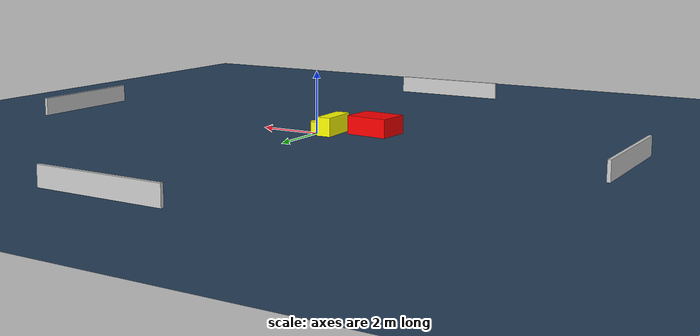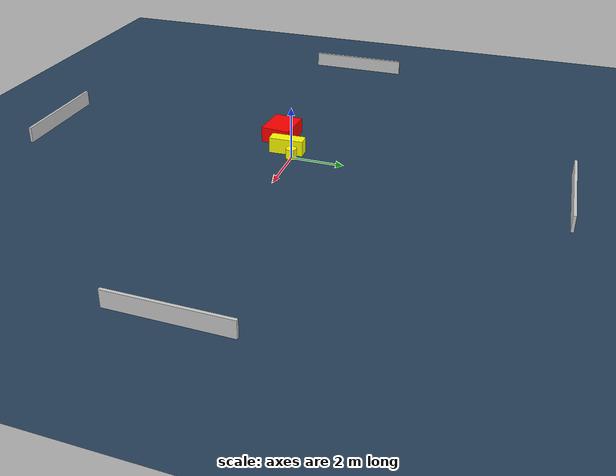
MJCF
<?xml version="1.0" ?>
<mujoco model="generated_environment">
  <option timestep="0.01" integrator="RK4" cone="elliptic"/>
  <default>
    <geom density="1"/>
  </default>
  <asset>
    <texture builtin="gradient" height="3072" name="skybox" rgb1="0.3 0.5 0.7" rgb2="0 0 0" type="skybox" width="512"/>
    <texture builtin="checker" height="300" name="groundplane" rgb1="0.2 0.3 0.4" rgb2="0.1 0.2 0.3" type="2d" width="300"/>
    <material name="groundplane" reflectance="0.2" texrepeat="5 5" texture="groundplane"/>
  </asset>
  <worldbody>
    <light dir="0 0 -1" directional="true" pos="0 0 1.5"/>
    <geom condim="3" friction="0.5 0.005 0.001" material="groundplane" name="floor" pos="0 0 0" size="0 0 0.05" type="plane"/>
    <body name="walls">
      <geom name="wall_1" condim="4" pos="-10.0 0.0 0.3" rgba="0.800000011920929 0.800000011920929 0.800000011920929 1.0" size="0.05 2.0 0.3" type="box"/>
      <geom name="wall_2" condim="4" pos="10.0 0.0 0.3" rgba="0.800000011920929 0.800000011920929 0.800000011920929 1.0" size="0.05 2.0 0.3" type="box"/>
      <geom name="wall_3" condim="4" pos="0.0 -10.0 0.3" rgba="0.800000011920929 0.800000011920929 0.800000011920929 1.0" size="2.0 0.05 0.3" type="box"/>
      <geom name="wall_4" condim="4" pos="0.0 10.0 0.3" rgba="0.800000011920929 0.800000011920929 0.800000011920929 1.0" size="2.0 0.05 0.3" type="box"/>
    </body>
    <body name="robot">
      <joint name="joint_x" type="slide" pos="0 0 0" axis="1 0 0"/>
      <joint name="joint_y" type="slide" pos="0 0 0" axis="0 1 0"/>
      <geom name="robot" type="cylinder" pos="0.0 0.0 0.2" size="0.2 0.2 0.0" mass="5.0" friction="1.0 0.005 0.0001" condim="4" rgba="1.0 1.0 0.0 1.0"/>
    </body>
    <body name="obstacle_1_movable">
      <geom name="obstacle_1_movable" condim="4" pos="-0.43695190136875045 -0.29741183478701116 0.3" euler="0 0 91.80188197048221" friction="0.0 0.005 0.001" rgba="1.0 1.0 0.0 1.0" size="0.6500163505422527 0.2328745468972468 0.3" type="box" mass="0.1"/>
      <joint type="free"/>
    </body>
    <body name="obstacle_2_static">
      <geom name="obstacle_2_static" condim="4" pos="-1.6231676517881162 -0.9315719383022975 0.3" euler="0 0 175.3995759495964" friction="0.0 0.005 0.001" rgba="1.0 0.0 0.0 1.0" size="0.6922387894028744 0.5568080031411178 0.3" type="box"/>
    </body>
  </worldbody>
  <actuator>
    <motor name="actuator_x" joint="joint_x" gear="1" ctrlrange="-1 1"/>
    <motor name="actuator_y" joint="joint_y" gear="1" ctrlrange="-1 1"/>
  </actuator>
</mujoco>
